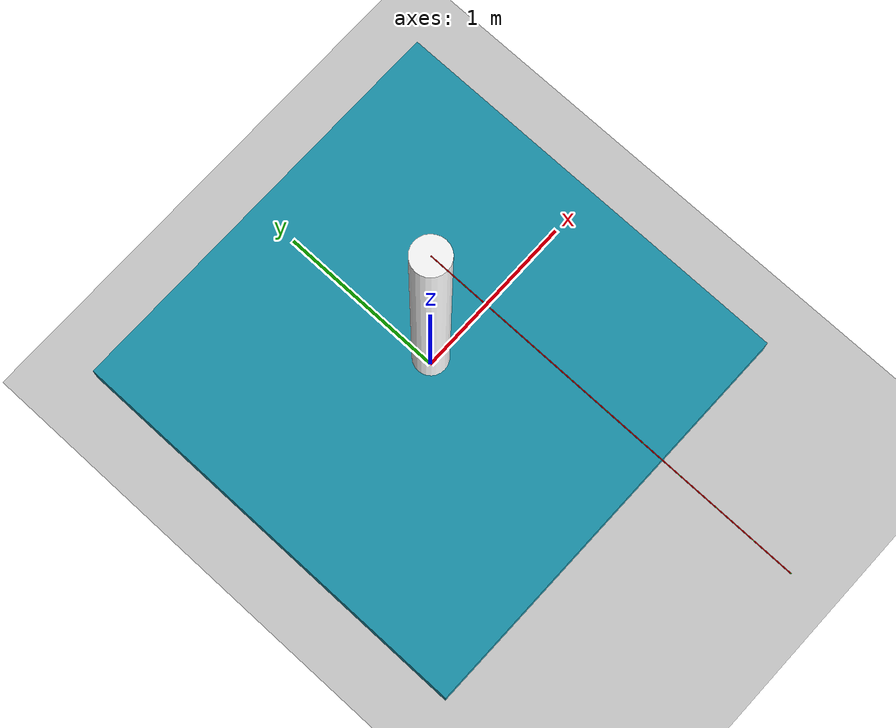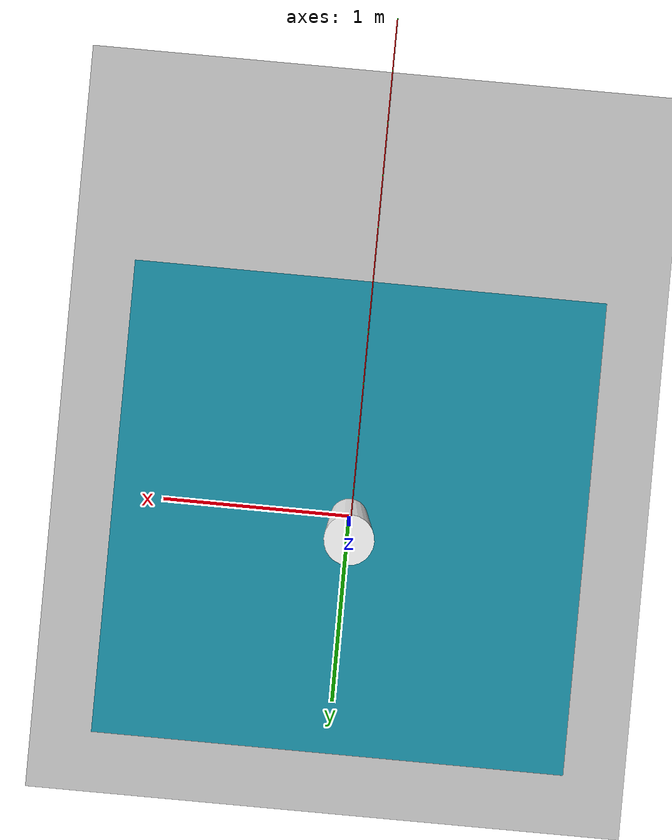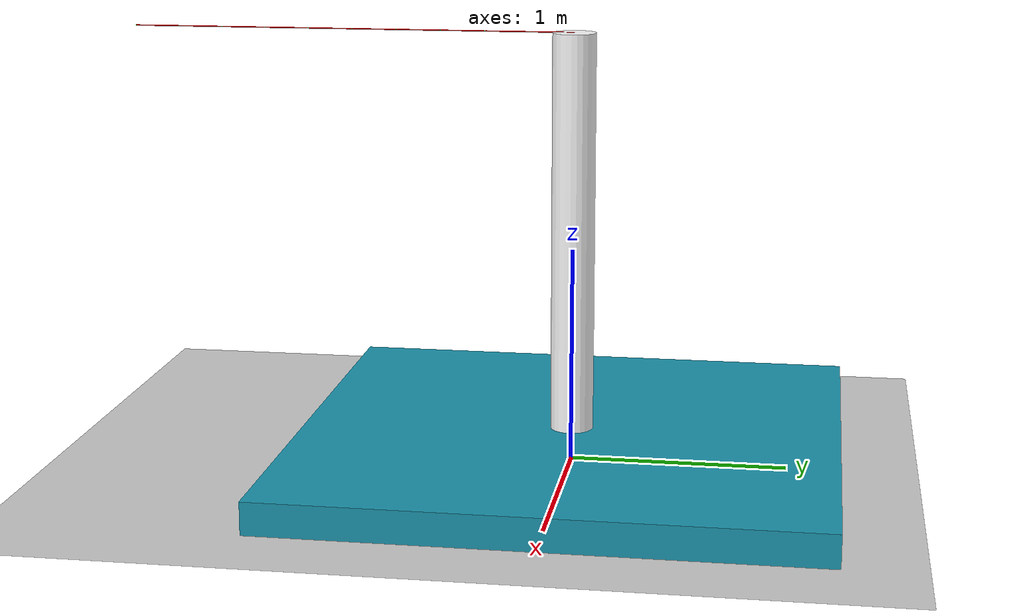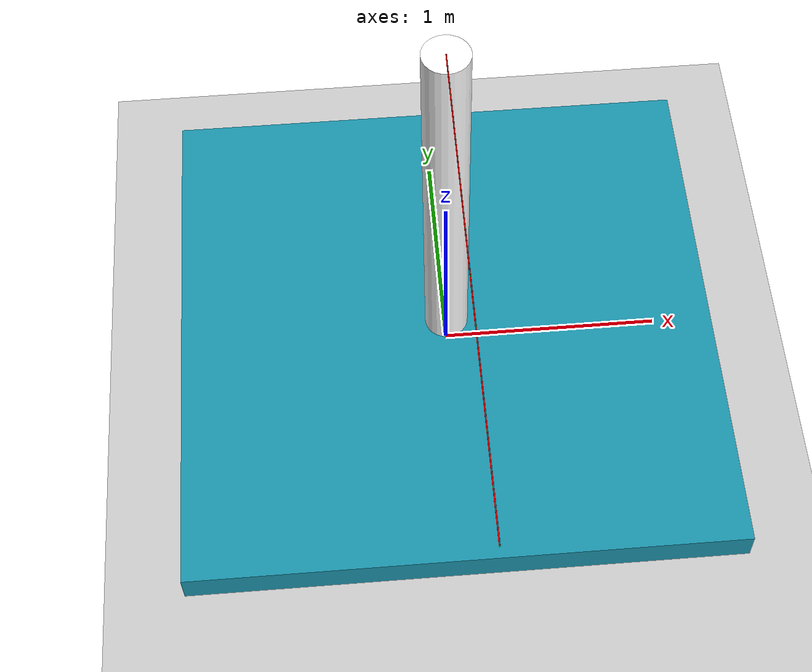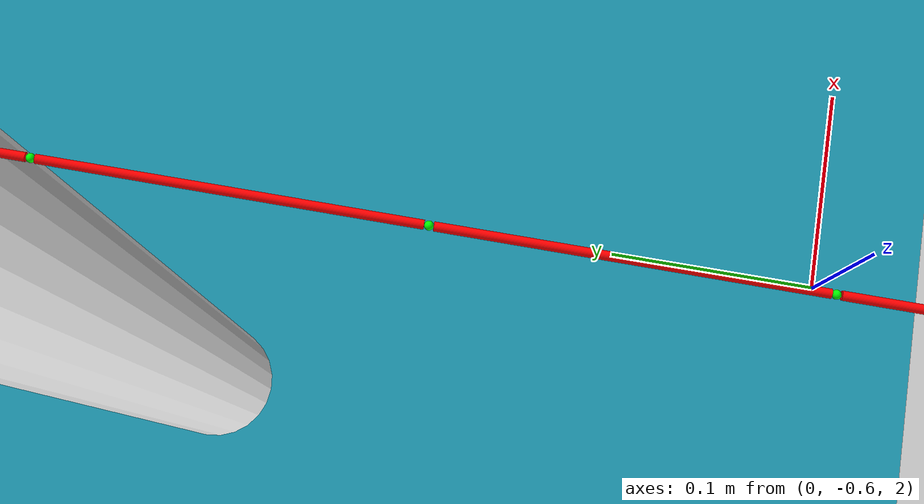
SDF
<?xml version="1.0" ?>
<sdf version="1.10">
    <world name="car_world">
        <physics name="1ms" type="ignored">
            <max_step_size>0.001</max_step_size>
            <real_time_factor>1.0</real_time_factor>
        </physics>
        <plugin
            filename="gz-sim-physics-system"
            name="gz::sim::systems::Physics">
        </plugin>
        <plugin
            filename="gz-sim-user-commands-system"
            name="gz::sim::systems::UserCommands">
        </plugin>
        <plugin
            filename="gz-sim-scene-broadcaster-system"
            name="gz::sim::systems::SceneBroadcaster">
        </plugin>

        <light type="directional" name="sun">
            <cast_shadows>true</cast_shadows>
            <pose>0 0 10 0 0 0</pose>
            <diffuse>0.8 0.8 0.8 1</diffuse>
            <specular>0.2 0.2 0.2 1</specular>
            <attenuation>
                <range>1000</range>
                <constant>0.9</constant>
                <linear>0.01</linear>
                <quadratic>0.001</quadratic>
            </attenuation>
            <direction>-0.5 0.1 -0.9</direction>
        </light>

        <model name="ground_plane">
            <static>true</static>
            <link name="link">
                <collision name="collision">
                <geometry>
                    <plane>
                    <normal>0 0 1</normal>
                    </plane>
                </geometry>
                </collision>
                <visual name="visual">
                <geometry>
                    <plane>
                    <normal>0 0 1</normal>
                    <size>100 100</size>
                    </plane>
                </geometry>
                <material>
                    <ambient>0.8 0.8 0.8 1</ambient>
                    <diffuse>0.8 0.8 0.8 1</diffuse>
                    <specular>0.8 0.8 0.8 1</specular>
                </material>
                </visual>
            </link>
        </model>

        <model name="tether">
            <pose>0 0 1 0 0 3.14</pose>
            <link name="base_link">
                <visual name='base_link visual'>
                <pose>0 0 0 0 0 0</pose>
                <geometry>
                    <cylinder>
                    <radius>0.1</radius>
                    <length>2</length>
                    </cylinder>
                </geometry>
                <material>
                    <ambient>1 1 1 1</ambient>
                    <diffuse>1 1 1 1</diffuse>
                    <specular>0.1 0.1 0.1 1</specular>
                    <emissive>0 0 0 1</emissive>
                </material>
                </visual>
                <collision name='base_link collision'>
                <pose>0 0 0 0 0 0</pose>
                <geometry>
                    <cylinder>
                    <radius>0.1</radius>
                    <length>2</length>
                    </cylinder>
                </geometry>
                </collision>
                <inertial>
                <mass>1</mass>
                <inertia>
                    <ixx>0.3333333333333333</ixx>
                    <ixy>0</ixy>
                    <ixz>0</ixz>
                    <iyy>0.5</iyy>
                    <iyz>0</iyz>
                    <izz>0.3333333333333333</izz>
                </inertia>
                </inertial>
            </link>
            <link name="cube">
                <pose relative_to='base_link'>0 0 -0.925 0 0 0</pose>
                <visual name='cube visual'>
                    <pose>0 0 0 0 0 0</pose>
                    <geometry>
                        <box>
                        <size>2.5 2.5 0.15</size>
                        </box>
                    </geometry>
                    <material>
                        <ambient>0.10461648408208657 0.5840784178830671 0.6795424696265424 1</ambient>
                        <diffuse>0.10461648408208657 0.5840784178830671 0.6795424696265424 1</diffuse>
                        <specular>0.1 0.1 0.1 1</specular>
                        <emissive>0 0 0 1</emissive>
                    </material>
                </visual>
                <collision name='cube collision'>
                    <pose>0 0 0 0 0 0</pose>
                    <geometry>
                        <box>
                            <size>2.5 2.5 0.15</size>
                        </box>
                    </geometry>
                    </collision>
                <inertial>
                    <mass>1</mass>
                    <inertia>
                        <ixx>0.16666666666666666</ixx>
                        <ixy>0</ixy>
                        <ixz>0</ixz>
                        <iyy>0.16666666666666666</iyy>
                        <iyz>0</iyz>
                        <izz>0.16666666666666666</izz>
                    </inertia>
                </inertial>
            </link>
            <joint name="base_link_to_cube" type="fixed">
                <pose relative_to='cube'>0 0 0 0 0 0 </pose>
                <parent>base_link</parent>
                <child>cube</child>
            </joint>

            <link name="cylinder_1">
                <pose relative_to='base_link'>0 0.1 1 1.5707963267948963 0 0</pose>
                <visual name='cylinder_1 visual'>
                <pose>0 0 0 0 0 0</pose>
                <geometry>
                    <cylinder>
                    <radius>0.0025</radius>
                    <length>0.2</length>
                    </cylinder>
                </geometry>
                <material>
                    <ambient>1 0 0 1</ambient>
                    <diffuse>1 0 0 1</diffuse>
                    <specular>0.1 0.1 0.1 1</specular>
                    <emissive>0 0 0 1</emissive>
                </material>
                </visual>
                <collision name='cylinder_1 collision'>
                <pose>0 0 0 0 0 0</pose>
                <geometry>
                    <cylinder>
                    <radius>0.0025</radius>
                    <length>0.2</length>
                    </cylinder>
                </geometry>
                </collision>
                <inertial>
                <mass>0.001</mass>
                <inertia>
                    <ixx>0.01</ixx>
                    <ixy>0</ixy>
                    <ixz>0</ixz>
                    <iyy>0.01</iyy>
                    <iyz>0</iyz>
                    <izz>0.01</izz>
                </inertia>
                </inertial>
            </link>
            <joint name="base_link_to_cylinder_1" type="fixed">
                <pose relative_to='cylinder_1'>0 0 0 0 0 0 </pose>
                <parent>base_link</parent>
                <child>cylinder_1</child>
            </joint>
            <link name="sphere_1">
                <pose relative_to='cylinder_1'>0 2.7755575615628914e-17 -0.1025 0 0 0</pose>
                <visual name='sphere_1 visual'>
                <pose>0 0 0 0 0 0</pose>
                <geometry>
                    <sphere>
                    <radius>0.0025</radius>
                    </sphere>
                </geometry>
                <material>
                    <ambient>0 1 0.001214107934117647 1</ambient>
                    <diffuse>0 1 0.001214107934117647 1</diffuse>
                    <specular>0.1 0.1 0.1 1</specular>
                    <emissive>0 0 0 1</emissive>
                </material>
                </visual>
                <collision name='sphere_1 collision'>
                <pose>0 0 0 0 0 0</pose>
                <geometry>
                    <sphere>
                    <radius>0.0025</radius>
                    </sphere>
                </geometry>
                </collision>
                <inertial>
                <mass>1</mass>
                <inertia>
                    <ixx>0.4</ixx>
                    <ixy>0</ixy>
                    <ixz>0</ixz>
                    <iyy>0.4</iyy>
                    <iyz>0</iyz>
                    <izz>0.4</izz>
                </inertia>
                </inertial>
            </link>
            <joint name="cylinder_1_to_sphere_1" type="universal">
                <pose relative_to='sphere_1'>0 0 0 0 0 0 </pose>
                <child>sphere_1</child>
                <parent>cylinder_1</parent>
                <axis>
                    <xyz>0 1 0</xyz>
                    <limit>
                        <lower>-1.57</lower>
                        <upper>1.57</upper>
                    </limit>
                    <dynamics>
                        <damping>1.0</damping>
                    </dynamics>
                    <use_parent_model_frame>true</use_parent_model_frame>
                </axis>
                <axis2>
                    <xyz>0 0 1</xyz>
                    <limit>
                        <lower>-1.57</lower>
                        <upper>1.57</upper>
                    </limit>
                    <dynamics>
                        <damping>1.0</damping>
                    </dynamics>
                    <use_parent_model_frame>true</use_parent_model_frame>
                </axis2>
                <physics>
                    <ode>
                        <cfm_damping>1</cfm_damping>
                    </ode>
                </physics>
            </joint>

            <link name="cylinder_2">
                <pose relative_to='sphere_1'>0 0 -0.1025 0 0 0</pose>
                <visual name='cylinder_2 visual'>
                    <pose>0 0 0 0 0 0</pose>
                    <geometry>
                        <cylinder>
                        <radius>0.0025</radius>
                        <length>0.2</length>
                        </cylinder>
                    </geometry>
                    <material>
                        <ambient>1 0 0 1</ambient>
                        <diffuse>1 0 0 1</diffuse>
                        <specular>0.1 0.1 0.1 1</specular>
                        <emissive>0 0 0 1</emissive>
                    </material>
                </visual>
                <collision name='cylinder_2 collision'>
                    <pose>0 0 0 0 0 0</pose>
                    <geometry>
                        <cylinder>
                        <radius>0.0025</radius>
                        <length>0.2</length>
                        </cylinder>
                    </geometry>
                </collision>
                <inertial>
                    <mass>0.001</mass>
                    <inertia>
                        <ixx>0.01</ixx>
                        <ixy>0</ixy>
                        <ixz>0</ixz>
                        <iyy>0.01</iyy>
                        <iyz>0</iyz>
                        <izz>0.01</izz>
                    </inertia>
                </inertial>
            </link>
            <joint name="sphere_1_to_cylinder_2" type="universal">
                <pose relative_to='sphere_1'>0 0 0 0 0 0 </pose>
                <child>cylinder_2</child>
                <parent>sphere_1</parent>
                <axis>
                    <xyz>0 1 0</xyz>
                    <limit>
                        <lower>-1.57</lower>
                        <upper>1.57</upper>
                    </limit>
                    <dynamics>
                        <damping>1.0</damping>
                    </dynamics>
                    <use_parent_model_frame>true</use_parent_model_frame>
                </axis>
                <axis2>
                    <xyz>0 0 1</xyz>
                    <limit>
                        <lower>-1.57</lower>
                        <upper>1.57</upper>
                    </limit>
                    <dynamics>
                        <damping>1.0</damping>
                    </dynamics>
                    <use_parent_model_frame>true</use_parent_model_frame>
                </axis2>
                <physics>
                    <ode>
                        <cfm_damping>1</cfm_damping>
                    </ode>
                </physics>
            </joint>
            <link name="sphere_2">
                <pose relative_to='cylinder_2'>0 0 -0.1025 0 0 0</pose>
                <visual name='sphere_2 visual'>
                <pose>0 0 0 0 0 0</pose>
                <geometry>
                    <sphere>
                    <radius>0.0025</radius>
                    </sphere>
                </geometry>
                <material>
                    <ambient>0 1 0.001214107934117647 1</ambient>
                    <diffuse>0 1 0.001214107934117647 1</diffuse>
                    <specular>0.1 0.1 0.1 1</specular>
                    <emissive>0 0 0 1</emissive>
                </material>
                </visual>
                <collision name='sphere_2 collision'>
                <pose>0 0 0 0 0 0</pose>
                <geometry>
                    <sphere>
                    <radius>0.0025</radius>
                    </sphere>
                </geometry>
                </collision>
            </link>
            <joint name="cylinder_2_to_sphere_2" type="universal">
                <pose relative_to='sphere_2'>0 0 0 0 0 0 </pose>
                <child>sphere_2</child>
                <parent>cylinder_2</parent>
                <axis>
                    <xyz>0 1 0</xyz>
                    <limit>
                        <lower>-1.57</lower>
                        <upper>1.57</upper>
                    </limit>
                    <dynamics>
                        <damping>1.0</damping>
                    </dynamics>
                    <use_parent_model_frame>true</use_parent_model_frame>
                </axis>
                <axis2>
                    <xyz>0 0 1</xyz>
                    <limit>
                        <lower>-1.57</lower>
                        <upper>1.57</upper>
                    </limit>
                    <dynamics>
                        <damping>1.0</damping>
                    </dynamics>
                    <use_parent_model_frame>true</use_parent_model_frame>
                </axis2>
                <physics>
                    <ode>
                        <cfm_damping>1</cfm_damping>
                    </ode>
                </physics>
            </joint>

            <link name="cylinder_3">
                <pose relative_to='sphere_2'>0 0 -0.1025 0 0 0</pose>
                <visual name='cylinder_3 visual'>
                    <pose>0 0 0 0 0 0</pose>
                    <geometry>
                        <cylinder>
                        <radius>0.0025</radius>
                        <length>0.2</length>
                        </cylinder>
                    </geometry>
                    <material>
                        <ambient>1 0 0 1</ambient>
                        <diffuse>1 0 0 1</diffuse>
                        <specular>0.1 0.1 0.1 1</specular>
                        <emissive>0 0 0 1</emissive>
                    </material>
                </visual>
                <collision name='cylinder_3 collision'>
                    <pose>0 0 0 0 0 0</pose>
                    <geometry>
                        <cylinder>
                        <radius>0.0025</radius>
                        <length>0.2</length>
                        </cylinder>
                    </geometry>
                </collision>
                <inertial>
                    <mass>0.001</mass>
                    <inertia>
                        <ixx>0.01</ixx>
                        <ixy>0</ixy>
                        <ixz>0</ixz>
                        <iyy>0.01</iyy>
                        <iyz>0</iyz>
                        <izz>0.01</izz>
                    </inertia>
                </inertial>
            </link>
            <joint name="sphere_2_to_cylinder_3" type="universal">
                <pose relative_to='sphere_2'>0 0 0 0 0 0 </pose>
                <child>cylinder_3</child>
                <parent>sphere_2</parent>
                <axis>
                    <xyz>0 1 0</xyz>
                    <limit>
                        <lower>-1.57</lower>
                        <upper>1.57</upper>
                    </limit>
                    <dynamics>
                        <damping>1.0</damping>
                    </dynamics>
                    <use_parent_model_frame>true</use_parent_model_frame>
                </axis>
                <axis2>
                    <xyz>0 0 1</xyz>
                    <limit>
                        <lower>-1.57</lower>
                        <upper>1.57</upper>
                    </limit>
                    <dynamics>
                        <damping>1.0</damping>
                    </dynamics>
                    <use_parent_model_frame>true</use_parent_model_frame>
                </axis2>
                <physics>
                    <ode>
                        <cfm_damping>1</cfm_damping>
                    </ode>
                </physics>
            </joint>
            <link name="sphere_3">
                <pose relative_to='cylinder_3'>0 0 -0.1025 0 0 0</pose>
                <visual name='sphere_3 visual'>
                <pose>0 0 0 0 0 0</pose>
                <geometry>
                    <sphere>
                    <radius>0.0025</radius>
                    </sphere>
                </geometry>
                <material>
                    <ambient>0 1 0.001214107934117647 1</ambient>
                    <diffuse>0 1 0.001214107934117647 1</diffuse>
                    <specular>0.1 0.1 0.1 1</specular>
                    <emissive>0 0 0 1</emissive>
                </material>
                </visual>
                <collision name='sphere_3 collision'>
                <pose>0 0 0 0 0 0</pose>
                <geometry>
                    <sphere>
                    <radius>0.0025</radius>
                    </sphere>
                </geometry>
                </collision>
            </link>
            <joint name="cylinder_3_to_sphere_3" type="universal">
                <pose relative_to='sphere_3'>0 0 0 0 0 0 </pose>
                <child>sphere_3</child>
                <parent>cylinder_3</parent>
                <axis>
                    <xyz>0 1 0</xyz>
                    <limit>
                        <lower>-1.57</lower>
                        <upper>1.57</upper>
                    </limit>
                    <dynamics>
                        <damping>1.0</damping>
                    </dynamics>
                    <use_parent_model_frame>true</use_parent_model_frame>
                </axis>
                <axis2>
                    <xyz>0 0 1</xyz>
                    <limit>
                        <lower>-1.57</lower>
                        <upper>1.57</upper>
                    </limit>
                    <dynamics>
                        <damping>1.0</damping>
                    </dynamics>
                    <use_parent_model_frame>true</use_parent_model_frame>
                </axis2>
                <physics>
                    <ode>
                        <cfm_damping>1</cfm_damping>
                    </ode>
                </physics>
            </joint>

            <link name="cylinder_4">
                <pose relative_to='sphere_3'>0 0 -0.1025 0 0 0</pose>
                <visual name='cylinder_4 visual'>
                    <pose>0 0 0 0 0 0</pose>
                    <geometry>
                        <cylinder>
                        <radius>0.0025</radius>
                        <length>0.2</length>
                        </cylinder>
                    </geometry>
                    <material>
                        <ambient>1 0 0 1</ambient>
                        <diffuse>1 0 0 1</diffuse>
                        <specular>0.1 0.1 0.1 1</specular>
                        <emissive>0 0 0 1</emissive>
                    </material>
                </visual>
                <collision name='cylinder_4 collision'>
                    <pose>0 0 0 0 0 0</pose>
                    <geometry>
                        <cylinder>
                        <radius>0.0025</radius>
                        <length>0.2</length>
                        </cylinder>
                    </geometry>
                </collision>
                <inertial>
                    <mass>0.001</mass>
                    <inertia>
                        <ixx>0.01</ixx>
                        <ixy>0</ixy>
                        <ixz>0</ixz>
                        <iyy>0.01</iyy>
                        <iyz>0</iyz>
                        <izz>0.01</izz>
                    </inertia>
                </inertial>
            </link>
            <joint name="sphere_3_to_cylinder_4" type="universal">
                <pose relative_to='sphere_3'>0 0 0 0 0 0 </pose>
                <child>cylinder_4</child>
                <parent>sphere_3</parent>
                <axis>
                    <xyz>0 1 0</xyz>
                    <limit>
                        <lower>-1.57</lower>
                        <upper>1.57</upper>
                    </limit>
                    <dynamics>
                        <damping>1.0</damping>
                    </dynamics>
                    <use_parent_model_frame>true</use_parent_model_frame>
                </axis>
                <axis2>
                    <xyz>0 0 1</xyz>
                    <limit>
                        <lower>-1.57</lower>
                        <upper>1.57</upper>
                    </limit>
                    <dynamics>
                        <damping>1.0</damping>
                    </dynamics>
                    <use_parent_model_frame>true</use_parent_model_frame>
                </axis2>
                <physics>
                    <ode>
                        <cfm_damping>1</cfm_damping>
                    </ode>
                </physics>
            </joint>
            <link name="sphere_4">
                <pose relative_to='cylinder_4'>0 0 -0.1025 0 0 0</pose>
                <visual name='sphere_4 visual'>
                <pose>0 0 0 0 0 0</pose>
                <geometry>
                    <sphere>
                    <radius>0.0025</radius>
                    </sphere>
                </geometry>
                <material>
                    <ambient>0 1 0.001214107934117647 1</ambient>
                    <diffuse>0 1 0.001214107934117647 1</diffuse>
                    <specular>0.1 0.1 0.1 1</specular>
                    <emissive>0 0 0 1</emissive>
                </material>
                </visual>
                <collision name='sphere_4 collision'>
                <pose>0 0 0 0 0 0</pose>
                <geometry>
                    <sphere>
                    <radius>0.0025</radius>
                    </sphere>
                </geometry>
                </collision>
            </link>
            <joint name="cylinder_4_to_sphere_4" type="universal">
                <pose relative_to='sphere_4'>0 0 0 0 0 0 </pose>
                <child>sphere_4</child>
                <parent>cylinder_4</parent>
                <axis>
                    <xyz>0 1 0</xyz>
                    <limit>
                        <lower>-1.57</lower>
                        <upper>1.57</upper>
                    </limit>
                    <dynamics>
                        <damping>1.0</damping>
                    </dynamics>
                    <use_parent_model_frame>true</use_parent_model_frame>
                </axis>
                <axis2>
                    <xyz>0 0 1</xyz>
                    <limit>
                        <lower>-1.57</lower>
                        <upper>1.57</upper>
                    </limit>
                    <dynamics>
                        <damping>1.0</damping>
                    </dynamics>
                    <use_parent_model_frame>true</use_parent_model_frame>
                </axis2>
                <physics>
                    <ode>
                        <cfm_damping>1</cfm_damping>
                    </ode>
                </physics>
            </joint>

            <link name="cylinder_5">
                <pose relative_to='sphere_4'>0 0 -0.1025 0 0 0</pose>
                <visual name='cylinder_5 visual'>
                    <pose>0 0 0 0 0 0</pose>
                    <geometry>
                        <cylinder>
                        <radius>0.0025</radius>
                        <length>0.2</length>
                        </cylinder>
                    </geometry>
                    <material>
                        <ambient>1 0 0 1</ambient>
                        <diffuse>1 0 0 1</diffuse>
                        <specular>0.1 0.1 0.1 1</specular>
                        <emissive>0 0 0 1</emissive>
                    </material>
                </visual>
                <collision name='cylinder_5 collision'>
                    <pose>0 0 0 0 0 0</pose>
                    <geometry>
                        <cylinder>
                        <radius>0.0025</radius>
                        <length>0.2</length>
                        </cylinder>
                    </geometry>
                </collision>
                <inertial>
                    <mass>0.001</mass>
                    <inertia>
                        <ixx>0.01</ixx>
                        <ixy>0</ixy>
                        <ixz>0</ixz>
                        <iyy>0.01</iyy>
                        <iyz>0</iyz>
                        <izz>0.01</izz>
                    </inertia>
                </inertial>
            </link>
            <joint name="sphere_4_to_cylinder_5" type="universal">
                <pose relative_to='sphere_4'>0 0 0 0 0 0 </pose>
                <child>cylinder_5</child>
                <parent>sphere_4</parent>
                <axis>
                    <xyz>0 1 0</xyz>
                    <limit>
                        <lower>-1.57</lower>
                        <upper>1.57</upper>
                    </limit>
                    <dynamics>
                        <damping>1.0</damping>
                    </dynamics>
                    <use_parent_model_frame>true</use_parent_model_frame>
                </axis>
                <axis2>
                    <xyz>0 0 1</xyz>
                    <limit>
                        <lower>-1.57</lower>
                        <upper>1.57</upper>
                    </limit>
                    <dynamics>
                        <damping>1.0</damping>
                    </dynamics>
                    <use_parent_model_frame>true</use_parent_model_frame>
                </axis2>
                <physics>
                    <ode>
                        <cfm_damping>1</cfm_damping>
                    </ode>
                </physics>
            </joint>
            <link name="sphere_5">
                <pose relative_to='cylinder_5'>0 0 -0.1025 0 0 0</pose>
                <visual name='sphere_5 visual'>
                <pose>0 0 0 0 0 0</pose>
                <geometry>
                    <sphere>
                    <radius>0.0025</radius>
                    </sphere>
                </geometry>
                <material>
                    <ambient>0 1 0.001214107934117647 1</ambient>
                    <diffuse>0 1 0.001214107934117647 1</diffuse>
                    <specular>0.1 0.1 0.1 1</specular>
                    <emissive>0 0 0 1</emissive>
                </material>
                </visual>
                <collision name='sphere_5 collision'>
                <pose>0 0 0 0 0 0</pose>
                <geometry>
                    <sphere>
                    <radius>0.0025</radius>
                    </sphere>
                </geometry>
                </collision>
            </link>
            <joint name="cylinder_5_to_sphere_5" type="universal">
                <pose relative_to='sphere_5'>0 0 0 0 0 0 </pose>
                <child>sphere_5</child>
                <parent>cylinder_5</parent>
                <axis>
                    <xyz>0 1 0</xyz>
                    <limit>
                        <lower>-1.57</lower>
                        <upper>1.57</upper>
                    </limit>
                    <dynamics>
                        <damping>1.0</damping>
                    </dynamics>
                    <use_parent_model_frame>true</use_parent_model_frame>
                </axis>
                <axis2>
                    <xyz>0 0 1</xyz>
                    <limit>
                        <lower>-1.57</lower>
                        <upper>1.57</upper>
                    </limit>
                    <dynamics>
                        <damping>1.0</damping>
                    </dynamics>
                    <use_parent_model_frame>true</use_parent_model_frame>
                </axis2>
                <physics>
                    <ode>
                        <cfm_damping>1</cfm_damping>
                    </ode>
                </physics>
            </joint>

            <link name="cylinder_6">
                <pose relative_to='sphere_5'>0 0 -0.1025 0 0 0</pose>
                <visual name='cylinder_6 visual'>
                    <pose>0 0 0 0 0 0</pose>
                    <geometry>
                        <cylinder>
                            <radius>0.0025</radius>
                            <length>0.2</length>
                        </cylinder>
                    </geometry>
                    <material>
                        <ambient>1 0 0 1</ambient>
                        <diffuse>1 0 0 1</diffuse>
                        <specular>0.1 0.1 0.1 1</specular>
                        <emissive>0 0 0 1</emissive>
                    </material>
                </visual>
                <collision name='cylinder_6 collision'>
                    <pose>0 0 0 0 0 0</pose>
                    <geometry>
                        <cylinder>
                            <radius>0.0025</radius>
                            <length>0.2</length>
                        </cylinder>
                    </geometry>
                </collision>
                <inertial>
                    <mass>0.001</mass>
                    <inertia>
                        <ixx>0.01</ixx>
                        <ixy>0</ixy>
                        <ixz>0</ixz>
                        <iyy>0.01</iyy>
                        <iyz>0</iyz>
                        <izz>0.01</izz>
                    </inertia>
                </inertial>
            </link>
            <joint name="sphere_5_to_cylinder_6" type="universal">
                <pose relative_to='sphere_5'>0 0 0 0 0 0</pose>
                <child>cylinder_6</child>
                <parent>sphere_5</parent>
                <axis>
                    <xyz>0 1 0</xyz>
                    <limit>
                        <lower>-1.57</lower>
                        <upper>1.57</upper>
                    </limit>
                    <dynamics>
                        <damping>1.0</damping>
                    </dynamics>
                    <use_parent_model_frame>true</use_parent_model_frame>
                </axis>
                <axis2>
                    <xyz>0 0 1</xyz>
                    <limit>
                        <lower>-1.57</lower>
                        <upper>1.57</upper>
                    </limit>
                    <dynamics>
                        <damping>1.0</damping>
                    </dynamics>
                    <use_parent_model_frame>true</use_parent_model_frame>
                </axis2>
                <physics>
                    <ode>
                        <cfm_damping>1</cfm_damping>
                    </ode>
                </physics>
            </joint>
            <link name="sphere_6">
                <pose relative_to='cylinder_6'>0 0 -0.1025 0 0 0</pose>
                <visual name='sphere_6 visual'>
                    <pose>0 0 0 0 0 0</pose>
                    <geometry>
                        <sphere>
                            <radius>0.0025</radius>
                        </sphere>
                    </geometry>
                    <material>
                        <ambient>0 1 0.001214107934117647 1</ambient>
                        <diffuse>0 1 0.001214107934117647 1</diffuse>
                        <specular>0.1 0.1 0.1 1</specular>
                        <emissive>0 0 0 1</emissive>
                    </material>
                </visual>
                <collision name='sphere_6 collision'>
                    <pose>0 0 0 0 0 0</pose>
                    <geometry>
                        <sphere>
                            <radius>0.0025</radius>
                        </sphere>
                    </geometry>
                </collision>
            </link>
            <joint name="cylinder_6_to_sphere_6" type="universal">
                <pose relative_to='sphere_6'>0 0 0 0 0 0</pose>
                <child>sphere_6</child>
                <parent>cylinder_6</parent>
                <axis>
                    <xyz>0 1 0</xyz>
                    <limit>
                        <lower>-1.57</lower>
                        <upper>1.57</upper>
                    </limit>
                    <dynamics>
                        <damping>1.0</damping>
                    </dynamics>
                    <use_parent_model_frame>true</use_parent_model_frame>
                </axis>
                <axis2>
                    <xyz>0 0 1</xyz>
                    <limit>
                        <lower>-1.57</lower>
                        <upper>1.57</upper>
                    </limit>
                    <dynamics>
                        <damping>1.0</damping>
                    </dynamics>
                    <use_parent_model_frame>true</use_parent_model_frame>
                </axis2>
                <physics>
                    <ode>
                        <cfm_damping>1</cfm_damping>
                    </ode>
                </physics>
            </joint>

            <link name="cylinder_7">
                <pose relative_to='sphere_6'>0 0 -0.1025 0 0 0</pose>
                <visual name='cylinder_7 visual'>
                    <pose>0 0 0 0 0 0</pose>
                    <geometry>
                        <cylinder>
                            <radius>0.0025</radius>
                            <length>0.2</length>
                        </cylinder>
                    </geometry>
                    <material>
                        <ambient>1 0 0 1</ambient>
                        <diffuse>1 0 0 1</diffuse>
                        <specular>0.1 0.1 0.1 1</specular>
                        <emissive>0 0 0 1</emissive>
                    </material>
                </visual>
                <collision name='cylinder_7 collision'>
                    <pose>0 0 0 0 0 0</pose>
                    <geometry>
                        <cylinder>
                            <radius>0.0025</radius>
                            <length>0.2</length>
                        </cylinder>
                    </geometry>
                </collision>
                <inertial>
                    <mass>0.001</mass>
                    <inertia>
                        <ixx>0.01</ixx>
                        <ixy>0</ixy>
                        <ixz>0</ixz>
                        <iyy>0.01</iyy>
                        <iyz>0</iyz>
                        <izz>0.01</izz>
                    </inertia>
                </inertial>
            </link>
            <joint name="sphere_6_to_cylinder_7" type="universal">
                <pose relative_to='sphere_6'>0 0 0 0 0 0</pose>
                <child>cylinder_7</child>
                <parent>sphere_6</parent>
                <axis>
                    <xyz>0 1 0</xyz>
                    <limit>
                        <lower>-1.57</lower>
                        <upper>1.57</upper>
                    </limit>
                    <dynamics>
                        <damping>1.0</damping>
                    </dynamics>
                    <use_parent_model_frame>true</use_parent_model_frame>
                </axis>
                <axis2>
                    <xyz>0 0 1</xyz>
                    <limit>
                        <lower>-1.57</lower>
                        <upper>1.57</upper>
                    </limit>
                    <dynamics>
                        <damping>1.0</damping>
                    </dynamics>
                    <use_parent_model_frame>true</use_parent_model_frame>
                </axis2>
                <physics>
                    <ode>
                        <cfm_damping>1</cfm_damping>
                    </ode>
                </physics>
            </joint>
            <link name="sphere_7">
                <pose relative_to='cylinder_7'>0 0 -0.1025 0 0 0</pose>
                <visual name='sphere_7 visual'>
                    <pose>0 0 0 0 0 0</pose>
                    <geometry>
                        <sphere>
                            <radius>0.0025</radius>
                        </sphere>
                    </geometry>
                    <material>
                        <ambient>0 1 0.001214107934117647 1</ambient>
                        <diffuse>0 1 0.001214107934117647 1</diffuse>
                        <specular>0.1 0.1 0.1 1</specular>
                        <emissive>0 0 0 1</emissive>
                    </material>
                </visual>
                <collision name='sphere_7 collision'>
                    <pose>0 0 0 0 0 0</pose>
                    <geometry>
                        <sphere>
                            <radius>0.0025</radius>
                        </sphere>
                    </geometry>
                </collision>
            </link>
            <joint name="cylinder_7_to_sphere_7" type="universal">
                <pose relative_to='sphere_7'>0 0 0 0 0 0</pose>
                <child>sphere_7</child>
                <parent>cylinder_7</parent>
                <axis>
                    <xyz>0 1 0</xyz>
                    <limit>
                        <lower>-1.57</lower>
                        <upper>1.57</upper>
                    </limit>
                    <dynamics>
                        <damping>1.0</damping>
                    </dynamics>
                    <use_parent_model_frame>true</use_parent_model_frame>
                </axis>
                <axis2>
                    <xyz>0 0 1</xyz>
                    <limit>
                        <lower>-1.57</lower>
                        <upper>1.57</upper>
                    </limit>
                    <dynamics>
                        <damping>1.0</damping>
                    </dynamics>
                    <use_parent_model_frame>true</use_parent_model_frame>
                </axis2>
                <physics>
                    <ode>
                        <cfm_damping>1</cfm_damping>
                    </ode>
                </physics>
            </joint>

            <link name="cylinder_8">
                <pose relative_to='sphere_7'>0 0 -0.1025 0 0 0</pose>
                <visual name='cylinder_8 visual'>
                    <pose>0 0 0 0 0 0</pose>
                    <geometry>
                        <cylinder>
                            <radius>0.0025</radius>
                            <length>0.2</length>
                        </cylinder>
                    </geometry>
                    <material>
                        <ambient>1 0 0 1</ambient>
                        <diffuse>1 0 0 1</diffuse>
                        <specular>0.1 0.1 0.1 1</specular>
                        <emissive>0 0 0 1</emissive>
                    </material>
                </visual>
                <collision name='cylinder_8 collision'>
                    <pose>0 0 0 0 0 0</pose>
                    <geometry>
                        <cylinder>
                            <radius>0.0025</radius>
                            <length>0.2</length>
                        </cylinder>
                    </geometry>
                </collision>
                <inertial>
                    <mass>0.001</mass>
                    <inertia>
                        <ixx>0.01</ixx>
                        <ixy>0</ixy>
                        <ixz>0</ixz>
                        <iyy>0.01</iyy>
                        <iyz>0</iyz>
                        <izz>0.01</izz>
                    </inertia>
                </inertial>
            </link>
            <joint name="sphere_7_to_cylinder_8" type="universal">
                <pose relative_to='sphere_7'>0 0 0 0 0 0</pose>
                <child>cylinder_8</child>
                <parent>sphere_7</parent>
                <axis>
                    <xyz>0 1 0</xyz>
                    <limit>
                        <lower>-1.57</lower>
                        <upper>1.57</upper>
                    </limit>
                    <dynamics>
                        <damping>1.0</damping>
                    </dynamics>
                    <use_parent_model_frame>true</use_parent_model_frame>
                </axis>
                <axis2>
                    <xyz>0 0 1</xyz>
                    <limit>
                        <lower>-1.57</lower>
                        <upper>1.57</upper>
                    </limit>
                    <dynamics>
                        <damping>1.0</damping>
                    </dynamics>
                    <use_parent_model_frame>true</use_parent_model_frame>
                </axis2>
                <physics>
                    <ode>
                        <cfm_damping>1</cfm_damping>
                    </ode>
                </physics>
            </joint>
            <link name="sphere_8">
                <pose relative_to='cylinder_8'>0 0 -0.1025 0 0 0</pose>
                <visual name='sphere_8 visual'>
                    <pose>0 0 0 0 0 0</pose>
                    <geometry>
                        <sphere>
                            <radius>0.0025</radius>
                        </sphere>
                    </geometry>
                    <material>
                        <ambient>0 1 0.001214107934117647 1</ambient>
                        <diffuse>0 1 0.001214107934117647 1</diffuse>
                        <specular>0.1 0.1 0.1 1</specular>
                        <emissive>0 0 0 1</emissive>
                    </material>
                </visual>
                <collision name='sphere_8 collision'>
                    <pose>0 0 0 0 0 0</pose>
                    <geometry>
                        <sphere>
                            <radius>0.0025</radius>
                        </sphere>
                    </geometry>
                </collision>
            </link>
            <joint name="cylinder_8_to_sphere_8" type="universal">
                <pose relative_to='sphere_8'>0 0 0 0 0 0</pose>
                <child>sphere_8</child>
                <parent>cylinder_8</parent>
                <axis>
                    <xyz>0 1 0</xyz>
                    <limit>
                        <lower>-1.57</lower>
                        <upper>1.57</upper>
                    </limit>
                    <dynamics>
                        <damping>1.0</damping>
                    </dynamics>
                    <use_parent_model_frame>true</use_parent_model_frame>
                </axis>
                <axis2>
                    <xyz>0 0 1</xyz>
                    <limit>
                        <lower>-1.57</lower>
                        <upper>1.57</upper>
                    </limit>
                    <dynamics>
                        <damping>1.0</damping>
                    </dynamics>
                    <use_parent_model_frame>true</use_parent_model_frame>
                </axis2>
                <physics>
                    <ode>
                        <cfm_damping>1</cfm_damping>
                    </ode>
                </physics>
            </joint>

            <link name="cylinder_9">
                <pose relative_to='sphere_8'>0 0 -0.1025 0 0 0</pose>
                <visual name='cylinder_9 visual'>
                    <pose>0 0 0 0 0 0</pose>
                    <geometry>
                        <cylinder>
                            <radius>0.0025</radius>
                            <length>0.2</length>
                        </cylinder>
                    </geometry>
                    <material>
                        <ambient>1 0 0 1</ambient>
                        <diffuse>1 0 0 1</diffuse>
                        <specular>0.1 0.1 0.1 1</specular>
                        <emissive>0 0 0 1</emissive>
                    </material>
                </visual>
                <collision name='cylinder_9 collision'>
                    <pose>0 0 0 0 0 0</pose>
                    <geometry>
                        <cylinder>
                            <radius>0.0025</radius>
                            <length>0.2</length>
                        </cylinder>
                    </geometry>
                </collision>
                <inertial>
                    <mass>0.001</mass>
                    <inertia>
                        <ixx>0.01</ixx>
                        <ixy>0</ixy>
                        <ixz>0</ixz>
                        <iyy>0.01</iyy>
                        <iyz>0</iyz>
                        <izz>0.01</izz>
                    </inertia>
                </inertial>
            </link>
            <joint name="sphere_8_to_cylinder_9" type="universal">
                <pose relative_to='sphere_8'>0 0 0 0 0 0</pose>
                <child>cylinder_9</child>
                <parent>sphere_8</parent>
                <axis>
                    <xyz>0 1 0</xyz>
                    <limit>
                        <lower>-1.57</lower>
                        <upper>1.57</upper>
                    </limit>
                    <dynamics>
                        <damping>1.0</damping>
                    </dynamics>
                    <use_parent_model_frame>true</use_parent_model_frame>
                </axis>
                <axis2>
                    <xyz>0 0 1</xyz>
                    <limit>
                        <lower>-1.57</lower>
                        <upper>1.57</upper>
                    </limit>
                    <dynamics>
                        <damping>1.0</damping>
                    </dynamics>
                    <use_parent_model_frame>true</use_parent_model_frame>
                </axis2>
                <physics>
                    <ode>
                        <cfm_damping>1</cfm_damping>
                    </ode>
                </physics>
            </joint>
            <link name="sphere_9">
                <pose relative_to='cylinder_9'>0 0 -0.1025 0 0 0</pose>
                <visual name='sphere_9 visual'>
                    <pose>0 0 0 0 0 0</pose>
                    <geometry>
                        <sphere>
                            <radius>0.0025</radius>
                        </sphere>
                    </geometry>
                    <material>
                        <ambient>0 1 0.001214107934117647 1</ambient>
                        <diffuse>0 1 0.001214107934117647 1</diffuse>
                        <specular>0.1 0.1 0.1 1</specular>
                        <emissive>0 0 0 1</emissive>
                    </material>
                </visual>
                <collision name='sphere_9 collision'>
                    <pose>0 0 0 0 0 0</pose>
                    <geometry>
                        <sphere>
                            <radius>0.0025</radius>
                        </sphere>
                    </geometry>
                </collision>
            </link>
            <joint name="cylinder_9_to_sphere_9" type="universal">
                <pose relative_to='sphere_9'>0 0 0 0 0 0</pose>
                <child>sphere_9</child>
                <parent>cylinder_9</parent>
                <axis>
                    <xyz>0 1 0</xyz>
                    <limit>
                        <lower>-1.57</lower>
                        <upper>1.57</upper>
                    </limit>
                    <dynamics>
                        <damping>1.0</damping>
                    </dynamics>
                    <use_parent_model_frame>true</use_parent_model_frame>
                </axis>
                <axis2>
                    <xyz>0 0 1</xyz>
                    <limit>
                        <lower>-1.57</lower>
                        <upper>1.57</upper>
                    </limit>
                    <dynamics>
                        <damping>1.0</damping>
                    </dynamics>
                    <use_parent_model_frame>true</use_parent_model_frame>
                </axis2>
                <physics>
                    <ode>
                        <cfm_damping>1</cfm_damping>
                    </ode>
                </physics>
            </joint>

            <link name="cylinder_10">
                <pose relative_to='sphere_9'>0 0 -0.1025 0 0 0</pose>
                <visual name='cylinder_10 visual'>
                    <pose>0 0 0 0 0 0</pose>
                    <geometry>
                        <cylinder>
                            <radius>0.0025</radius>
                            <length>0.2</length>
                        </cylinder>
                    </geometry>
                    <material>
                        <ambient>1 0 0 1</ambient>
                        <diffuse>1 0 0 1</diffuse>
                        <specular>0.1 0.1 0.1 1</specular>
                        <emissive>0 0 0 1</emissive>
                    </material>
                </visual>
                <collision name='cylinder_10 collision'>
                    <pose>0 0 0 0 0 0</pose>
                    <geometry>
                        <cylinder>
                            <radius>0.0025</radius>
                            <length>0.2</length>
                        </cylinder>
                    </geometry>
                </collision>
                <inertial>
                    <mass>0.001</mass>
                    <inertia>
                        <ixx>0.01</ixx>
                        <ixy>0</ixy>
                        <ixz>0</ixz>
                        <iyy>0.01</iyy>
                        <iyz>0</iyz>
                        <izz>0.01</izz>
                    </inertia>
                </inertial>
            </link>
            <joint name="sphere_9_to_cylinder_10" type="universal">
                <pose relative_to='sphere_9'>0 0 0 0 0 0</pose>
                <child>cylinder_10</child>
                <parent>sphere_9</parent>
                <axis>
                    <xyz>0 1 0</xyz>
                    <limit>
                        <lower>-1.57</lower>
                        <upper>1.57</upper>
                    </limit>
                    <dynamics>
                        <damping>1.0</damping>
                    </dynamics>
                    <use_parent_model_frame>true</use_parent_model_frame>
                </axis>
                <axis2>
                    <xyz>0 0 1</xyz>
                    <limit>
                        <lower>-1.57</lower>
                        <upper>1.57</upper>
                    </limit>
                    <dynamics>
                        <damping>1.0</damping>
                    </dynamics>
                    <use_parent_model_frame>true</use_parent_model_frame>
                </axis2>
                <physics>
                    <ode>
                        <cfm_damping>1</cfm_damping>
                    </ode>
                </physics>
            </joint>
            <link name="sphere_10">
                <pose relative_to='cylinder_10'>0 0 -0.1025 0 0 0</pose>
                <visual name='sphere_10 visual'>
                    <pose>0 0 0 0 0 0</pose>
                    <geometry>
                        <sphere>
                            <radius>0.0025</radius>
                        </sphere>
                    </geometry>
                    <material>
                        <ambient>0 1 0.001214107934117647 1</ambient>
                        <diffuse>0 1 0.001214107934117647 1</diffuse>
                        <specular>0.1 0.1 0.1 1</specular>
                        <emissive>0 0 0 1</emissive>
                    </material>
                </visual>
                <collision name='sphere_10 collision'>
                    <pose>0 0 0 0 0 0</pose>
                    <geometry>
                        <sphere>
                            <radius>0.0025</radius>
                        </sphere>
                    </geometry>
                </collision>
            </link>
            <joint name="cylinder_10_to_sphere_10" type="universal">
                <pose relative_to='sphere_10'>0 0 0 0 0 0</pose>
                <child>sphere_10</child>
                <parent>cylinder_10</parent>
                <axis>
                    <xyz>0 1 0</xyz>
                    <limit>
                        <lower>-1.57</lower>
                        <upper>1.57</upper>
                    </limit>
                    <dynamics>
                        <damping>1.0</damping>
                    </dynamics>
                    <use_parent_model_frame>true</use_parent_model_frame>
                </axis>
                <axis2>
                    <xyz>0 0 1</xyz>
                    <limit>
                        <lower>-1.57</lower>
                        <upper>1.57</upper>
                    </limit>
                    <dynamics>
                        <damping>1.0</damping>
                    </dynamics>
                    <use_parent_model_frame>true</use_parent_model_frame>
                </axis2>
                <physics>
                    <ode>
                        <cfm_damping>1</cfm_damping>
                    </ode>
                </physics>
            </joint>

        </model>
    </world>
</sdf>
